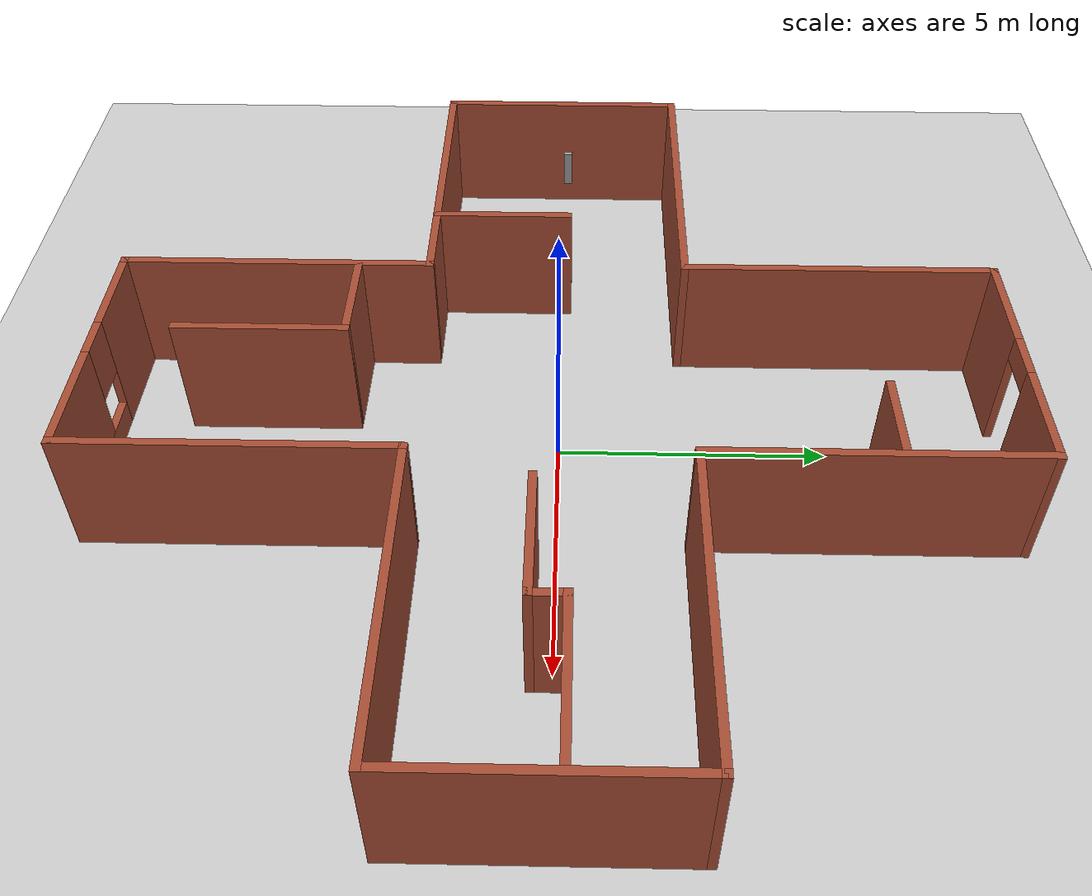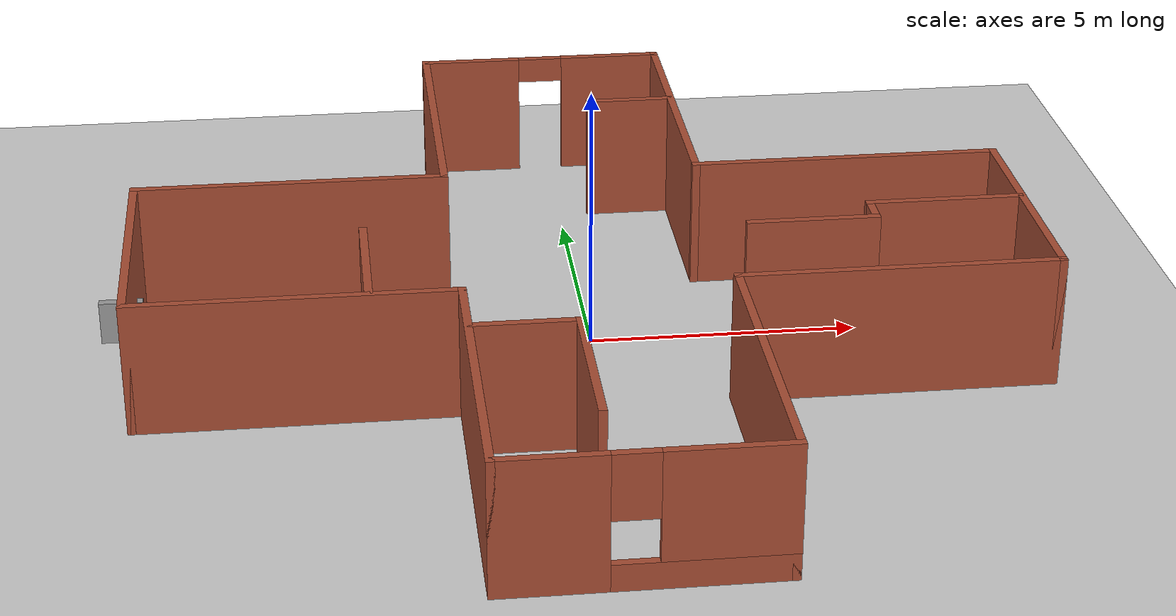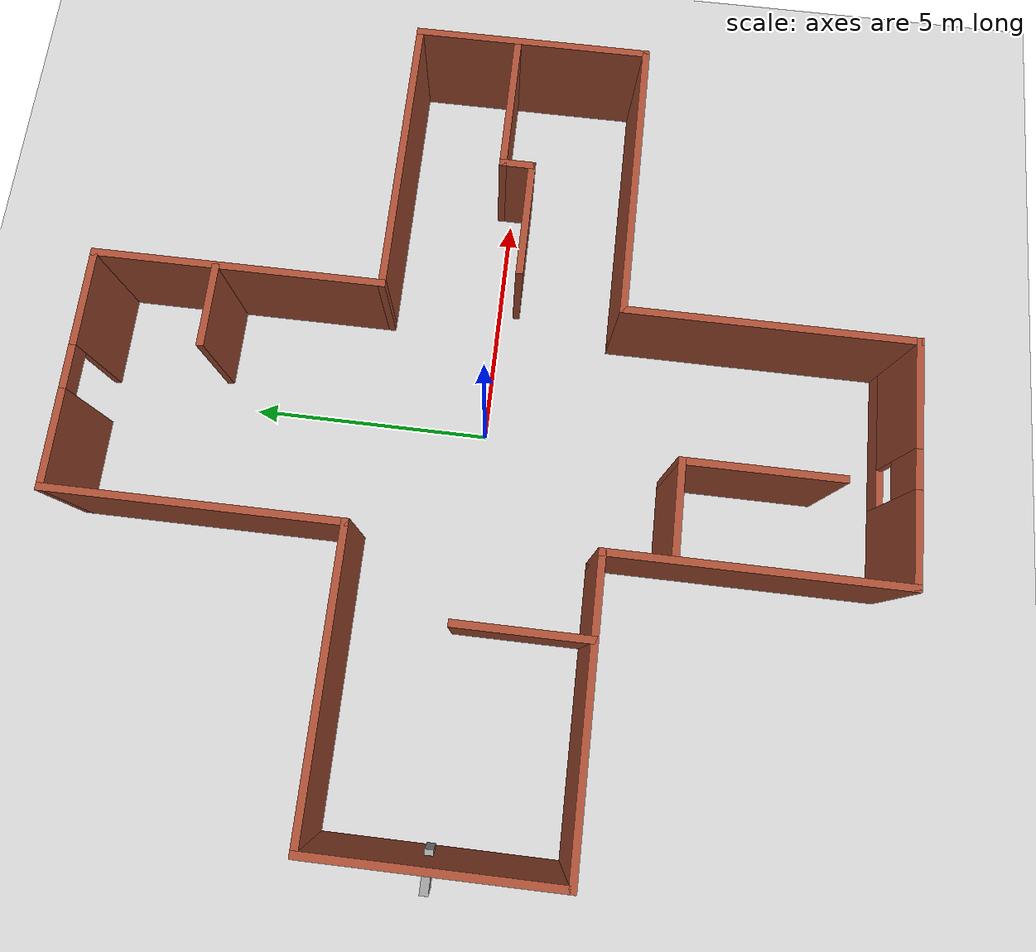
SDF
<sdf version="1.7">
 <world name="default">
  <light name="sun" type="directional">
   <pose>0 0 10 0 -0 0</pose>
   <diffuse>0.8 0.8 0.8 1</diffuse>
   <specular>0.2 0.2 0.2 1</specular>
   <attenuation>
    <range>1000</range>
    <constant>0.9</constant>
    <linear>0.01</linear>
    <quadratic>0.001</quadratic>
   </attenuation>
   <direction>-0.5 0.1 -0.9</direction>
   <spot><inner_angle>0</inner_angle><outer_angle>0</outer_angle><falloff>0</falloff></spot>
  </light>
  <model name="ground_plane">
   <static>1</static>
   <link name="link">
    <collision name="collision">
     <geometry><plane><normal>0 0 1</normal><size>100 100</size></plane></geometry>
     <surface>
      <contact><collide_bitmask>65535</collide_bitmask></contact>
      <friction><ode><mu>100</mu><mu2>50</mu2></ode></friction>
     </surface>
    </collision>
    <visual name="visual">
     <cast_shadows>0</cast_shadows>
     <geometry><plane><normal>0 0 1</normal><size>100 100</size></plane></geometry>
     <material>
      <script><uri>file://media/materials/scripts/gazebo.material</uri><name>Gazebo/Grey</name></script>
     </material>
    </visual>
   </link>
  </model>
  <gravity>0 0 -9.8</gravity>
  <magnetic_field>6e-06 2.3e-05 -4.2e-05</magnetic_field>
  <atmosphere type="adiabatic"/>
  <physics type="ode">
   <max_step_size>0.001</max_step_size>
   <real_time_factor>1</real_time_factor>
   <real_time_update_rate>1000</real_time_update_rate>
   <ode>
    <solver>
     <type>quick</type>
     <iters>150</iters>
     <precon_iters>0</precon_iters>
     <sor>1.4</sor>
     <use_dynamic_moi_rescaling>1</use_dynamic_moi_rescaling>
    </solver>
    <constraints>
     <cfm>0.00001</cfm>
     <erp>0.2</erp>
     <contact_max_correcting_vel>2000</contact_max_correcting_vel>
     <contact_surface_layer>0.01</contact_surface_layer>
    </constraints>
   </ode>
  </physics>
  <scene><ambient>0.4 0.4 0.4 1</ambient><background>0.7 0.7 0.7 1</background><shadows>1</shadows></scene>
  <spherical_coordinates>
   <surface_model>EARTH_WGS84</surface_model>
   <latitude_deg>0</latitude_deg>
   <longitude_deg>0</longitude_deg>
   <elevation>0</elevation>
   <heading_deg>0</heading_deg>
  </spherical_coordinates>
  <model name="map">
   <pose>-0.1261 -0.079832 0 0 -0 0</pose>
   <link name="Wall_11">
    <pose>0 -8.275 0 0 -0 0</pose>
    <visual name="Wall_11_Visual_0">
     <pose>-1.52886 0 1.25 0 -0 0</pose>
     <geometry><box><size>1.94228 0.15 2.5</size></box></geometry>
     <material>
      <script><uri>file://media/materials/scripts/gazebo.material</uri><name>Gazebo/Bricks</name></script>
      <ambient>1 1 1 1</ambient>
     </material>
     <meta><layer>0</layer></meta>
    </visual>
    <collision name="Wall_11_Collision_0">
     <geometry><box><size>1.94228 0.15 2.5</size></box></geometry>
     <pose>-1.52886 0 1.25 0 -0 0</pose>
    </collision>
    <visual name="Wall_11_Visual_1">
     <pose>0.971139 0 0.25 0 -0 0</pose>
     <geometry><box><size>3.05772 0.15 0.5</size></box></geometry>
     <material>
      <script><uri>file://media/materials/scripts/gazebo.material</uri><name>Gazebo/Bricks</name></script>
      <ambient>1 1 1 1</ambient>
     </material>
     <meta><layer>0</layer></meta>
    </visual>
    <collision name="Wall_11_Collision_1">
     <geometry><box><size>3.05772 0.15 0.5</size></box></geometry>
     <pose>0.971139 0 0.25 0 -0 0</pose>
    </collision>
    <visual name="Wall_11_Visual_2">
     <pose>1.37114 0 1.5 0 -0 0</pose>
     <geometry><box><size>2.25772 0.15 2</size></box></geometry>
     <material>
      <script><uri>file://media/materials/scripts/gazebo.material</uri><name>Gazebo/Bricks</name></script>
      <ambient>1 1 1 1</ambient>
     </material>
     <meta><layer>0</layer></meta>
    </visual>
    <collision name="Wall_11_Collision_2">
     <geometry><box><size>2.25772 0.15 2</size></box></geometry>
     <pose>1.37114 0 1.5 0 -0 0</pose>
    </collision>
    <visual name="Wall_11_Visual_3">
     <pose>-0.157722 0 1.9 0 -0 0</pose>
     <geometry><box><size>0.8 0.15 1.2</size></box></geometry>
     <material>
      <script><uri>file://media/materials/scripts/gazebo.material</uri><name>Gazebo/Bricks</name></script>
      <ambient>1 1 1 1</ambient>
     </material>
     <meta><layer>0</layer></meta>
    </visual>
    <collision name="Wall_11_Collision_3">
     <geometry><box><size>0.8 0.15 1.2</size></box></geometry>
     <pose>-0.157722 0 1.9 0 -0 0</pose>
    </collision>
   </link>
   <link name="Wall_12">
    <collision name="Wall_12_Collision">
     <geometry><box><size>6 0.15 2.5</size></box></geometry>
     <pose>0 0 1.25 0 -0 0</pose>
    </collision>
    <visual name="Wall_12_Visual">
     <pose>0 0 1.25 0 -0 0</pose>
     <geometry><box><size>6 0.15 2.5</size></box></geometry>
     <material>
      <script><uri>file://media/materials/scripts/gazebo.material</uri><name>Gazebo/Bricks</name></script>
      <ambient>1 1 1 1</ambient>
     </material>
     <meta><layer>0</layer></meta>
    </visual>
    <pose>2.425 -5.35 0 0 -0 1.5708</pose>
   </link>
   <link name="Wall_13">
    <collision name="Wall_13_Collision">
     <geometry><box><size>6 0.15 2.5</size></box></geometry>
     <pose>0 0 1.25 0 -0 0</pose>
    </collision>
    <visual name="Wall_13_Visual">
     <pose>0 0 1.25 0 -0 0</pose>
     <geometry><box><size>6 0.15 2.5</size></box></geometry>
     <material>
      <script><uri>file://media/materials/scripts/gazebo.material</uri><name>Gazebo/Bricks</name></script>
      <ambient>1 1 1 1</ambient>
     </material>
     <meta><layer>0</layer></meta>
    </visual>
    <pose>5.35 -2.425 0 0 -0 0</pose>
   </link>
   <link name="Wall_14">
    <collision name="Wall_14_Collision">
     <geometry><box><size>5 0.15 2.5</size></box></geometry>
     <pose>0 0 1.25 0 -0 0</pose>
    </collision>
    <visual name="Wall_14_Visual">
     <pose>0 0 1.25 0 -0 0</pose>
     <geometry><box><size>5 0.15 2.5</size></box></geometry>
     <material>
      <script><uri>file://media/materials/scripts/gazebo.material</uri><name>Gazebo/Bricks</name></script>
      <ambient>1 1 1 1</ambient>
     </material>
     <meta><layer>0</layer></meta>
    </visual>
    <pose>8.275 0 0 0 -0 1.5708</pose>
   </link>
   <link name="Wall_15">
    <collision name="Wall_15_Collision">
     <geometry><box><size>6 0.15 2.5</size></box></geometry>
     <pose>0 0 1.25 0 -0 0</pose>
    </collision>
    <visual name="Wall_15_Visual">
     <pose>0 0 1.25 0 -0 0</pose>
     <geometry><box><size>6 0.15 2.5</size></box></geometry>
     <material>
      <script><uri>file://media/materials/scripts/gazebo.material</uri><name>Gazebo/Bricks</name></script>
      <ambient>1 1 1 1</ambient>
     </material>
     <meta><layer>0</layer></meta>
    </visual>
    <pose>5.35 2.425 0 0 -0 3.14159</pose>
   </link>
   <link name="Wall_16">
    <collision name="Wall_16_Collision">
     <geometry><box><size>6 0.15 2.5</size></box></geometry>
     <pose>0 0 1.25 0 -0 0</pose>
    </collision>
    <visual name="Wall_16_Visual">
     <pose>0 0 1.25 0 -0 0</pose>
     <geometry><box><size>6 0.15 2.5</size></box></geometry>
     <material>
      <script><uri>file://media/materials/scripts/gazebo.material</uri><name>Gazebo/Bricks</name></script>
      <ambient>1 1 1 1</ambient>
     </material>
     <meta><layer>0</layer></meta>
    </visual>
    <pose>2.425 5.35 0 0 -0 1.5708</pose>
   </link>
   <link name="Wall_17">
    <pose>0 8.275 0 0 -0 3.14159</pose>
    <visual name="Wall_17_Visual_0">
     <pose>-1.4665 0 1.25 0 -0 0</pose>
     <geometry><box><size>2.06701 0.15 2.5</size></box></geometry>
     <material>
      <script><uri>file://media/materials/scripts/gazebo.material</uri><name>Gazebo/Bricks</name></script>
      <ambient>1 1 1 1</ambient>
     </material>
     <meta><layer>0</layer></meta>
    </visual>
    <collision name="Wall_17_Collision_0">
     <geometry><box><size>2.06701 0.15 2.5</size></box></geometry>
     <pose>-1.4665 0 1.25 0 -0 0</pose>
    </collision>
    <visual name="Wall_17_Visual_1">
     <pose>1.4835 0 1.25 0 -0 0</pose>
     <geometry><box><size>2.03299 0.15 2.5</size></box></geometry>
     <material>
      <script><uri>file://media/materials/scripts/gazebo.material</uri><name>Gazebo/Bricks</name></script>
      <ambient>1 1 1 1</ambient>
     </material>
     <meta><layer>0</layer></meta>
    </visual>
    <collision name="Wall_17_Collision_1">
     <geometry><box><size>2.03299 0.15 2.5</size></box></geometry>
     <pose>1.4835 0 1.25 0 -0 0</pose>
    </collision>
    <visual name="Wall_17_Visual_2">
     <pose>0.017007 0 2.25 0 -0 0</pose>
     <geometry><box><size>0.9 0.15 0.5</size></box></geometry>
     <material>
      <script><uri>file://media/materials/scripts/gazebo.material</uri><name>Gazebo/Bricks</name></script>
      <ambient>1 1 1 1</ambient>
     </material>
     <meta><layer>0</layer></meta>
    </visual>
    <collision name="Wall_17_Collision_2">
     <geometry><box><size>0.9 0.15 0.5</size></box></geometry>
     <pose>0.017007 0 2.25 0 -0 0</pose>
    </collision>
   </link>
   <link name="Wall_18">
    <collision name="Wall_18_Collision">
     <geometry><box><size>6 0.15 2.5</size></box></geometry>
     <pose>0 0 1.25 0 -0 0</pose>
    </collision>
    <visual name="Wall_18_Visual">
     <pose>0 0 1.25 0 -0 0</pose>
     <geometry><box><size>6 0.15 2.5</size></box></geometry>
     <material>
      <script><uri>file://media/materials/scripts/gazebo.material</uri><name>Gazebo/Bricks</name></script>
      <ambient>1 1 1 1</ambient>
     </material>
     <meta><layer>0</layer></meta>
    </visual>
    <pose>-2.425 5.35 0 0 -0 -1.5708</pose>
   </link>
   <link name="Wall_19">
    <collision name="Wall_19_Collision">
     <geometry><box><size>6 0.15 2.5</size></box></geometry>
     <pose>0 0 1.25 0 -0 0</pose>
    </collision>
    <visual name="Wall_19_Visual">
     <pose>0 0 1.25 0 -0 0</pose>
     <geometry><box><size>6 0.15 2.5</size></box></geometry>
     <material>
      <script><uri>file://media/materials/scripts/gazebo.material</uri><name>Gazebo/Bricks</name></script>
      <ambient>1 1 1 1</ambient>
     </material>
     <meta><layer>0</layer></meta>
    </visual>
    <pose>-5.35 2.425 0 0 -0 3.14159</pose>
   </link>
   <link name="Wall_22">
    <collision name="Wall_22_Collision">
     <geometry><box><size>2.75 0.15 2.5</size></box></geometry>
     <pose>0 0 1.25 0 -0 0</pose>
    </collision>
    <visual name="Wall_22_Visual">
     <pose>0 0 1.25 0 -0 0</pose>
     <geometry><box><size>2.75 0.15 2.5</size></box></geometry>
     <material>
      <script><uri>file://media/materials/scripts/gazebo.material</uri><name>Gazebo/Bricks</name></script>
      <ambient>1 1 1 1</ambient>
     </material>
     <meta><layer>0</layer></meta>
    </visual>
    <pose>-4.04807 -1.10668 0 0 -0 1.5708</pose>
   </link>
   <link name="Wall_24">
    <collision name="Wall_24_Collision">
     <geometry><box><size>3 0.15 2.5</size></box></geometry>
     <pose>0 0 1.25 0 -0 0</pose>
    </collision>
    <visual name="Wall_24_Visual">
     <pose>0 0 1.25 0 -0 0</pose>
     <geometry><box><size>3 0.15 2.5</size></box></geometry>
     <material>
      <script><uri>file://media/materials/scripts/gazebo.material</uri><name>Gazebo/Bricks</name></script>
      <ambient>1 1 1 1</ambient>
     </material>
     <meta><layer>0</layer></meta>
    </visual>
    <pose>6.79361 0.315855 0 0 -0 3.14159</pose>
   </link>
   <link name="Wall_25">
    <collision name="Wall_25_Collision">
     <geometry><box><size>0.75 0.15 2.5</size></box></geometry>
     <pose>0 0 1.25 0 -0 0</pose>
    </collision>
    <visual name="Wall_25_Visual">
     <pose>0 0 1.25 0 -0 0</pose>
     <geometry><box><size>0.75 0.15 2.5</size></box></geometry>
     <material>
      <script><uri>file://media/materials/scripts/gazebo.material</uri><name>Gazebo/Bricks</name></script>
      <ambient>1 1 1 1</ambient>
     </material>
     <meta><layer>0</layer></meta>
    </visual>
    <pose>5.36861 0.015855 0 0 -0 -1.5708</pose>
   </link>
   <link name="Wall_26">
    <collision name="Wall_26_Collision">
     <geometry><box><size>2.5 0.15 2.5</size></box></geometry>
     <pose>0 0 1.25 0 -0 0</pose>
    </collision>
    <visual name="Wall_26_Visual">
     <pose>0 0 1.25 0 -0 0</pose>
     <geometry><box><size>2.5 0.15 2.5</size></box></geometry>
     <material>
      <script><uri>file://media/materials/scripts/gazebo.material</uri><name>Gazebo/Bricks</name></script>
      <ambient>1 1 1 1</ambient>
     </material>
     <meta><layer>0</layer></meta>
    </visual>
    <pose>4.19361 -0.284145 0 0 -0 3.14159</pose>
   </link>
   <link name="Wall_28">
    <collision name="Wall_28_Collision">
     <geometry><box><size>2 0.15 2.5</size></box></geometry>
     <pose>0 0 1.25 0 -0 0</pose>
    </collision>
    <visual name="Wall_28_Visual">
     <pose>0 0 1.25 0 -0 0</pose>
     <geometry><box><size>2 0.15 2.5</size></box></geometry>
     <material>
      <script><uri>file://media/materials/scripts/gazebo.material</uri><name>Gazebo/Bricks</name></script>
      <ambient>1 1 1 1</ambient>
     </material>
     <meta><layer>0</layer></meta>
    </visual>
    <pose>-1.44061 -3.78324 0 0 -0 0</pose>
   </link>
   <link name="Wall_29">
    <collision name="Wall_29_Collision">
     <geometry><box><size>3.25 0.15 2.5</size></box></geometry>
     <pose>0 0 1.25 0 -0 0</pose>
    </collision>
    <visual name="Wall_29_Visual">
     <pose>0 0 1.25 0 -0 0</pose>
     <geometry><box><size>3.25 0.15 2.5</size></box></geometry>
     <material>
      <script><uri>file://media/materials/scripts/gazebo.material</uri><name>Gazebo/Bricks</name></script>
      <ambient>1 1 1 1</ambient>
     </material>
     <meta><layer>0</layer></meta>
    </visual>
    <pose>-0.515609 -5.33324 0 0 -0 -1.5708</pose>
   </link>
   <link name="Wall_33">
    <collision name="Wall_33_Collision">
     <geometry><box><size>1.75 0.15 2.5</size></box></geometry>
     <pose>0 0 1.25 0 -0 0</pose>
    </collision>
    <visual name="Wall_33_Visual">
     <pose>0 0 1.25 0 -0 0</pose>
     <geometry><box><size>1.75 0.15 2.5</size></box></geometry>
     <material>
      <script><uri>file://media/materials/scripts/gazebo.material</uri><name>Gazebo/Bricks</name></script>
      <ambient>1 1 1 1</ambient>
     </material>
     <meta><layer>0</layer></meta>
    </visual>
    <pose>1.57588 5.79151 0 0 -0 3.14159</pose>
   </link>
   <link name="Wall_5">
    <collision name="Wall_5_Collision">
     <geometry><box><size>5 0.15 2.5</size></box></geometry>
     <pose>0 0 1.25 0 -0 0</pose>
    </collision>
    <visual name="Wall_5_Visual">
     <pose>0 0 1.25 0 -0 0</pose>
     <geometry><box><size>5 0.15 2.5</size></box></geometry>
     <material>
      <script><uri>file://media/materials/scripts/gazebo.material</uri><name>Gazebo/Bricks</name></script>
      <ambient>1 1 1 1</ambient>
     </material>
     <meta><layer>0</layer></meta>
    </visual>
    <pose>-8.275 0 0 0 -0 -1.5708</pose>
   </link>
   <link name="Wall_6">
    <collision name="Wall_6_Collision">
     <geometry><box><size>6 0.15 2.5</size></box></geometry>
     <pose>0 0 1.25 0 -0 0</pose>
    </collision>
    <visual name="Wall_6_Visual">
     <pose>0 0 1.25 0 -0 0</pose>
     <geometry><box><size>6 0.15 2.5</size></box></geometry>
     <material>
      <script><uri>file://media/materials/scripts/gazebo.material</uri><name>Gazebo/Bricks</name></script>
      <ambient>1 1 1 1</ambient>
     </material>
     <meta><layer>0</layer></meta>
    </visual>
    <pose>-5.35 -2.425 0 0 -0 0</pose>
   </link>
   <link name="Wall_9">
    <collision name="Wall_9_Collision">
     <geometry><box><size>6 0.15 2.5</size></box></geometry>
     <pose>0 0 1.25 0 -0 0</pose>
    </collision>
    <visual name="Wall_9_Visual">
     <pose>0 0 1.25 0 -0 0</pose>
     <geometry><box><size>6 0.15 2.5</size></box></geometry>
     <material>
      <script><uri>file://media/materials/scripts/gazebo.material</uri><name>Gazebo/Bricks</name></script>
      <ambient>1 1 1 1</ambient>
     </material>
     <meta><layer>0</layer></meta>
    </visual>
    <pose>-2.425 -5.35 0 0 -0 -1.5708</pose>
   </link>
   <link name="Window_0">
    <collision name="Window_0_Collision">
     <geometry><box><size>0.8 0.17 0.8</size></box></geometry>
     <pose>0 0 0.4 0 -0 0</pose>
    </collision>
    <visual name="Window_0_Visual">
     <pose>0 0 0.4 0 -0 0</pose>
     <geometry><box><size>0.8 0.17 0.8</size></box></geometry>
     <material>
      <script><uri>file://media/materials/scripts/gazebo.material</uri><name>Gazebo/Grey</name></script>
     </material>
    </visual>
    <pose>-8.49509 0.149887 0.5 0 -0 0</pose>
   </link>
   <static>1</static>
  </model>
 </world>
</sdf>
